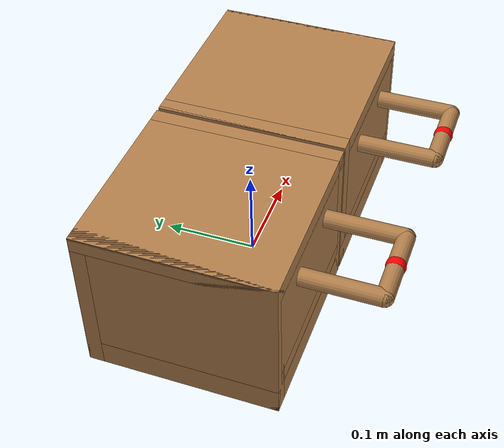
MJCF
<mujoco model="drawer">
    <compiler angle="radian" inertiafromgeom="auto"/>
    <asset>
        <texture name="T_shelf_wood" type="cube" file="textures/wood1.png"/>
        <material name="drawer_col" texture="T_shelf_wood" reflectance="0.7" texrepeat="5 5" texuniform="true"/>
    </asset>
    <default>
        <default class="drawer_col">
            <geom conaffinity="1" condim="3" contype="1" group="0" material="drawer_col" solimp="0.99 0.99 0.01"
                  solref="0.01 1" density="8000"/>
        </default>
    </default>

    <worldbody>
        <body>
            <body name="object">
                <body name="drawer_case1" pos="-0.10 0 0.084">
                    <geom class="drawer_col" pos="-0.09 0 0" size="0.008 0.1 0.084" type="box"/>
                    <geom class="drawer_col" pos="0.09 0 0" size="0.008 0.1 0.084" type="box"/>
                    <geom class="drawer_col" pos="0 0.092 -0.008" size="0.098 0.008 0.076" type="box"/>
                    <geom class="drawer_col" pos="0 -0.008 -0.07" size="0.098 0.092 0.014" type="box"/>
                    <geom class="drawer_col" pos="0 0 0.076" size="0.098 0.1 0.008" type="box"/>
                    <body name="drawer_link_1" pos="0 -0.01 0.006">
                        <joint type="slide" range="-0.16 0" axis="0 1 0" name="goal_1_slidey" pos="0 0 0" damping="2"
                               limited="true"/>
                        <geom class="drawer_col" pos="0 -0.082 0.008" size="0.09 0.008 0.052" type="box" mass=".04"/>
                        <geom class="drawer_col" pos="0 0.082 0.008" size="0.09 0.008 0.052" type="box" mass=".04"/>
                        <geom class="drawer_col" pos="-0.082 0 0.008" size="0.007 0.074 0.052" type="box" mass=".04"/>
                        <geom class="drawer_col" pos="0.082 0 0.008" size="0.007 0.074 0.052" type="box" mass=".04"/>
                        <geom class="drawer_col" pos="0 0 -0.052" size="0.09 0.09 0.008" type="box" mass=".04"/>
                        <geom class="drawer_col" euler="1.571 0 0" pos="-0.04 -0.12 0.04" size="0.009 0.05"
                              type="capsule" mass=".06"/>
                        <geom class="drawer_col" euler="0 1.57 0" pos="0 -0.17 0.04" size="0.009 0.04" type="capsule"
                              mass=".06"/>
                        <geom class="drawer_col" euler="1.57 0 0" pos="0.04 -0.12 0.04" size="0.009 0.05" type="capsule"
                              mass=".06"/>
                        <body name="handle_pos_1" pos="0 -0.17 0.04">
                            <geom name='handle_1' class="drawer_col" size="0.01" rgba="1 0 0 0" type="sphere"/>
                        </body>
                        <site name="goal1" size="0.01" rgba="1 0 0 1" pos="0 -0.17 0.04"/>
                    </body>

                </body>
                <body name="drawer_case2" pos="0.10 0 0.084">
                    <geom class="drawer_col" pos="-0.09 0 0" size="0.008 0.1 0.084" type="box"/>
                    <geom class="drawer_col" pos="0.09 0 0" size="0.008 0.1 0.084" type="box"/>
                    <geom class="drawer_col" pos="0 0.092 -0.008" size="0.098 0.008 0.076" type="box"/>
                    <geom class="drawer_col" pos="0 -0.008 -0.07" size="0.098 0.092 0.014" type="box"/>
                    <geom class="drawer_col" pos="0 0 0.076" size="0.098 0.1 0.008" type="box"/>
                    <body name="drawer_link_2" pos="0 -0.01 0.006">
                        <joint type="slide" range="-0.16 0" axis="0 1 0" name="goal_2_slidey" pos="0 0 0" damping="2"
                               limited="true"/>
                        <geom class="drawer_col" pos="0 -0.082 0.008" size="0.09 0.008 0.052" type="box" mass=".04"/>
                        <geom class="drawer_col" pos="0 0.082 0.008" size="0.09 0.008 0.052" type="box" mass=".04"/>
                        <geom class="drawer_col" pos="-0.082 0 0.008" size="0.007 0.074 0.052" type="box" mass=".04"/>
                        <geom class="drawer_col" pos="0.082 0 0.008" size="0.007 0.074 0.052" type="box" mass=".04"/>
                        <geom class="drawer_col" pos="0 0 -0.052" size="0.09 0.09 0.008" type="box" mass=".04"/>
                        <geom class="drawer_col" euler="1.571 0 0" pos="-0.04 -0.12 0.04" size="0.009 0.05"
                              type="capsule" mass=".06"/>
                        <geom class="drawer_col" euler="0 1.57 0" pos="0 -0.17 0.04" size="0.009 0.04" type="capsule"
                              mass=".06"/>
                        <geom class="drawer_col" euler="1.57 0 0" pos="0.04 -0.12 0.04" size="0.009 0.05" type="capsule"
                              mass=".06"/>
                        <body name="handle_pos_2" pos="0 -0.17 0.04">
                            <geom name='handle_2' class="drawer_col" size="0.01" rgba="1 0 0 0" type="sphere"/>
                        </body>
                        <site name="goal2" size="0.01" rgba="1 0 0 1" pos="0 -0.17 0.04"/>
                    </body>
                </body>
            </body>
            <site rgba="0 0 0 0" size="0.0005" pos="0 0 -0.08" name="bottom_site"/>
            <site rgba="0 0 0 0" size="0.0005" pos="0 0 0.65" name="top_site"/>
            <site rgba="0 0 0 0" size="0.0005" pos="0.011 0.09 0" name="horizontal_radius_site"/>
        </body>
    </worldbody>
</mujoco>
